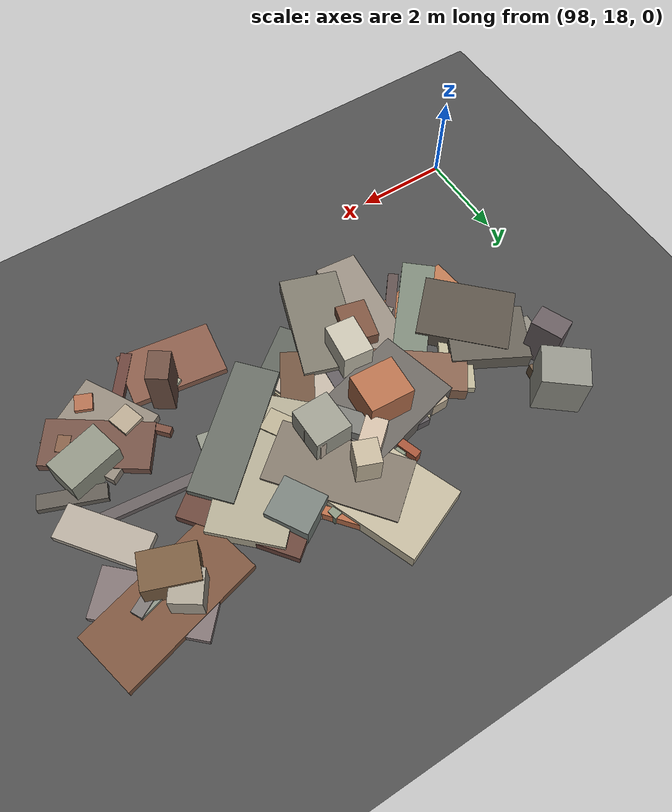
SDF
<sdf version="1.6">
 <world name="navitas_arena">
  <model name="ground_plane">
   <static>true</static>
   <link name="link">
    <collision name="collision">
     <geometry><plane><normal>0 0 1</normal><size>400 400</size></plane></geometry>
     <surface><friction><ode><mu>0.800</mu><mu2>0.800</mu2></ode></friction></surface>
    </collision>
    <visual name="visual">
     <cast_shadows>false</cast_shadows>
     <geometry><plane><normal>0 0 1</normal><size>400 400</size></plane></geometry>
     <material>
      <specular>0.04 0.04 0.04 1</specular>
      <script>
       <uri>file://media/materials/scripts/navitas_asphalt.material</uri>
       <name>Navitas/RealArenaAsphalt</name>
      </script>
     </material>
    </visual>
   </link>
  </model>
  <model name="deb_zor_19">
   <static>true</static>
   <pose>107.960 21.640 0.000 0 0 0</pose>
   <link name="link">
    <collision name="col_0">
     <pose>0.249 -0.945 0.342 0.000 0.000 3.403</pose>
     <geometry><box><size>1.146 0.755 0.685</size></box></geometry>
    </collision>
    <visual name="vis_0">
     <pose>0.249 -0.945 0.342 0.000 0.000 3.403</pose>
     <geometry><box><size>1.146 0.755 0.685</size></box></geometry>
     <material>
      <ambient>0.52 0.53 0.48 1</ambient>
      <diffuse>0.56 0.57 0.51 1</diffuse>
      <specular>0.05 0.05 0.045 1</specular>
     </material>
    </visual>
    <collision name="col_1">
     <pose>0.770 -0.571 0.084 0.000 0.000 2.771</pose>
     <geometry><box><size>1.347 0.318 0.167</size></box></geometry>
    </collision>
    <visual name="vis_1">
     <pose>0.770 -0.571 0.084 0.000 0.000 2.771</pose>
     <geometry><box><size>1.347 0.318 0.167</size></box></geometry>
     <material>
      <ambient>0.35 0.34 0.31 1</ambient>
      <diffuse>0.38 0.36 0.33 1</diffuse>
      <specular>0.05 0.05 0.045 1</specular>
     </material>
    </visual>
    <collision name="col_2">
     <pose>0.594 0.447 0.092 0.000 0.000 2.242</pose>
     <geometry><box><size>1.804 0.712 0.185</size></box></geometry>
    </collision>
    <visual name="vis_2">
     <pose>0.594 0.447 0.092 0.000 0.000 2.242</pose>
     <geometry><box><size>1.804 0.712 0.185</size></box></geometry>
     <material>
      <ambient>0.64 0.61 0.56 1</ambient>
      <diffuse>0.70 0.66 0.61 1</diffuse>
      <specular>0.05 0.05 0.045 1</specular>
     </material>
    </visual>
    <collision name="col_3">
     <pose>-0.097 -1.288 0.112 0.000 0.000 2.545</pose>
     <geometry><box><size>2.186 1.008 0.224</size></box></geometry>
    </collision>
    <visual name="vis_3">
     <pose>-0.097 -1.288 0.112 0.000 0.000 2.545</pose>
     <geometry><box><size>2.186 1.008 0.224</size></box></geometry>
     <material>
      <ambient>0.42 0.30 0.25 1</ambient>
      <diffuse>0.45 0.32 0.27 1</diffuse>
      <specular>0.05 0.05 0.045 1</specular>
     </material>
    </visual>
    <collision name="col_4">
     <pose>-0.656 0.235 0.075 0.000 0.000 3.037</pose>
     <geometry><box><size>2.300 0.229 0.150</size></box></geometry>
    </collision>
    <visual name="vis_4">
     <pose>-0.656 0.235 0.075 0.000 0.000 3.037</pose>
     <geometry><box><size>2.300 0.229 0.150</size></box></geometry>
     <material>
      <ambient>0.37 0.34 0.34 1</ambient>
      <diffuse>0.40 0.37 0.37 1</diffuse>
      <specular>0.05 0.05 0.045 1</specular>
     </material>
    </visual>
   </link>
  </model>
  <model name="deb_zor_94">
   <static>true</static>
   <pose>102.501 22.941 0.000 0 0 0</pose>
   <link name="link">
    <collision name="col_0">
     <pose>0.140 -1.023 0.117 0.000 0.000 1.494</pose>
     <geometry><box><size>2.828 1.320 0.233</size></box></geometry>
    </collision>
    <visual name="vis_0">
     <pose>0.140 -1.023 0.117 0.000 0.000 1.494</pose>
     <geometry><box><size>2.828 1.320 0.233</size></box></geometry>
     <material>
      <ambient>0.35 0.33 0.35 1</ambient>
      <diffuse>0.38 0.36 0.37 1</diffuse>
      <specular>0.05 0.05 0.045 1</specular>
     </material>
    </visual>
    <collision name="col_1">
     <pose>0.463 -0.564 0.141 0.000 0.000 0.103</pose>
     <geometry><box><size>0.380 0.413 0.281</size></box></geometry>
    </collision>
    <visual name="vis_1">
     <pose>0.463 -0.564 0.141 0.000 0.000 0.103</pose>
     <geometry><box><size>0.380 0.413 0.281</size></box></geometry>
     <material>
      <ambient>0.40 0.37 0.35 1</ambient>
      <diffuse>0.44 0.40 0.38 1</diffuse>
      <specular>0.05 0.05 0.045 1</specular>
     </material>
    </visual>
    <collision name="col_2">
     <pose>-0.500 -0.191 0.181 0.000 0.000 1.571</pose>
     <geometry><box><size>0.994 0.868 0.362</size></box></geometry>
    </collision>
    <visual name="vis_2">
     <pose>-0.500 -0.191 0.181 0.000 0.000 1.571</pose>
     <geometry><box><size>0.994 0.868 0.362</size></box></geometry>
     <material>
      <ambient>0.65 0.60 0.52 1</ambient>
      <diffuse>0.71 0.65 0.56 1</diffuse>
      <specular>0.05 0.05 0.045 1</specular>
     </material>
    </visual>
    <collision name="col_3">
     <pose>1.109 -0.287 0.330 0.000 0.000 2.240</pose>
     <geometry><box><size>0.744 0.469 0.659</size></box></geometry>
    </collision>
    <visual name="vis_3">
     <pose>1.109 -0.287 0.330 0.000 0.000 2.240</pose>
     <geometry><box><size>0.744 0.469 0.659</size></box></geometry>
     <material>
      <ambient>0.45 0.44 0.42 1</ambient>
      <diffuse>0.48 0.48 0.46 1</diffuse>
      <specular>0.05 0.05 0.045 1</specular>
     </material>
    </visual>
    <collision name="col_4">
     <pose>0.537 0.161 0.180 0.000 0.000 1.901</pose>
     <geometry><box><size>1.704 0.178 0.360</size></box></geometry>
    </collision>
    <visual name="vis_4">
     <pose>0.537 0.161 0.180 0.000 0.000 1.901</pose>
     <geometry><box><size>1.704 0.178 0.360</size></box></geometry>
     <material>
      <ambient>0.59 0.30 0.21 1</ambient>
      <diffuse>0.64 0.33 0.22 1</diffuse>
      <specular>0.05 0.05 0.045 1</specular>
     </material>
    </visual>
   </link>
  </model>
  <model name="deb_zor_148">
   <static>true</static>
   <pose>104.408 23.110 0.000 0 0 0</pose>
   <link name="link">
    <collision name="col_0">
     <pose>0.607 0.652 0.088 0.000 0.000 3.002</pose>
     <geometry><box><size>1.903 0.270 0.176</size></box></geometry>
    </collision>
    <visual name="vis_0">
     <pose>0.607 0.652 0.088 0.000 0.000 3.002</pose>
     <geometry><box><size>1.903 0.270 0.176</size></box></geometry>
     <material>
      <ambient>0.51 0.50 0.47 1</ambient>
      <diffuse>0.55 0.54 0.51 1</diffuse>
      <specular>0.05 0.05 0.045 1</specular>
     </material>
    </visual>
    <collision name="col_1">
     <pose>-0.999 0.143 0.450 0.000 0.000 0.715</pose>
     <geometry><box><size>0.667 0.447 0.900</size></box></geometry>
    </collision>
    <visual name="vis_1">
     <pose>-0.999 0.143 0.450 0.000 0.000 0.715</pose>
     <geometry><box><size>0.667 0.447 0.900</size></box></geometry>
     <material>
      <ambient>0.75 0.67 0.60 1</ambient>
      <diffuse>0.81 0.73 0.65 1</diffuse>
      <specular>0.05 0.05 0.045 1</specular>
     </material>
    </visual>
    <collision name="col_2">
     <pose>-0.596 0.710 0.148 0.000 0.000 0.206</pose>
     <geometry><box><size>2.047 0.204 0.296</size></box></geometry>
    </collision>
    <visual name="vis_2">
     <pose>-0.596 0.710 0.148 0.000 0.000 0.206</pose>
     <geometry><box><size>2.047 0.204 0.296</size></box></geometry>
     <material>
      <ambient>0.49 0.52 0.45 1</ambient>
      <diffuse>0.53 0.57 0.49 1</diffuse>
      <specular>0.05 0.05 0.045 1</specular>
     </material>
    </visual>
    <collision name="col_3">
     <pose>0.299 -0.127 0.127 0.000 0.000 2.830</pose>
     <geometry><box><size>0.467 0.393 0.254</size></box></geometry>
    </collision>
    <visual name="vis_3">
     <pose>0.299 -0.127 0.127 0.000 0.000 2.830</pose>
     <geometry><box><size>0.467 0.393 0.254</size></box></geometry>
     <material>
      <ambient>0.54 0.55 0.50 1</ambient>
      <diffuse>0.58 0.59 0.54 1</diffuse>
      <specular>0.05 0.05 0.045 1</specular>
     </material>
    </visual>
    <collision name="col_4">
     <pose>-0.578 0.266 0.163 0.000 0.000 1.890</pose>
     <geometry><box><size>2.414 0.928 0.325</size></box></geometry>
    </collision>
    <visual name="vis_4">
     <pose>-0.578 0.266 0.163 0.000 0.000 1.890</pose>
     <geometry><box><size>2.414 0.928 0.325</size></box></geometry>
     <material>
      <ambient>0.40 0.37 0.36 1</ambient>
      <diffuse>0.44 0.40 0.39 1</diffuse>
      <specular>0.05 0.05 0.045 1</specular>
     </material>
    </visual>
    <collision name="col_5">
     <pose>-0.174 0.261 0.201 0.000 0.000 2.254</pose>
     <geometry><box><size>2.702 1.289 0.401</size></box></geometry>
    </collision>
    <visual name="vis_5">
     <pose>-0.174 0.261 0.201 0.000 0.000 2.254</pose>
     <geometry><box><size>2.702 1.289 0.401</size></box></geometry>
     <material>
      <ambient>0.48 0.43 0.39 1</ambient>
      <diffuse>0.51 0.47 0.42 1</diffuse>
      <specular>0.05 0.05 0.045 1</specular>
     </material>
    </visual>
    <collision name="col_6">
     <pose>-0.568 0.750 0.179 0.000 0.000 1.955</pose>
     <geometry><box><size>2.997 1.621 0.358</size></box></geometry>
    </collision>
    <visual name="vis_6">
     <pose>-0.568 0.750 0.179 0.000 0.000 1.955</pose>
     <geometry><box><size>2.997 1.621 0.358</size></box></geometry>
     <material>
      <ambient>0.69 0.66 0.57 1</ambient>
      <diffuse>0.75 0.71 0.61 1</diffuse>
      <specular>0.05 0.05 0.045 1</specular>
     </material>
    </visual>
   </link>
  </model>
  <model name="deb_zor_173">
   <static>true</static>
   <pose>99.375 23.600 0.000 0 0 0</pose>
   <link name="link">
    <collision name="col_0">
     <pose>-0.218 -0.358 0.579 0.000 0.000 1.978</pose>
     <geometry><box><size>0.670 0.479 1.159</size></box></geometry>
    </collision>
    <visual name="vis_0">
     <pose>-0.218 -0.358 0.579 0.000 0.000 1.978</pose>
     <geometry><box><size>0.670 0.479 1.159</size></box></geometry>
     <material>
      <ambient>0.37 0.33 0.35 1</ambient>
      <diffuse>0.40 0.36 0.37 1</diffuse>
      <specular>0.05 0.05 0.045 1</specular>
     </material>
    </visual>
    <collision name="col_1">
     <pose>0.152 0.434 0.168 0.000 0.000 1.118</pose>
     <geometry><box><size>0.341 0.245 0.336</size></box></geometry>
    </collision>
    <visual name="vis_1">
     <pose>0.152 0.434 0.168 0.000 0.000 1.118</pose>
     <geometry><box><size>0.341 0.245 0.336</size></box></geometry>
     <material>
      <ambient>0.60 0.30 0.21 1</ambient>
      <diffuse>0.65 0.33 0.23 1</diffuse>
      <specular>0.05 0.05 0.045 1</specular>
     </material>
    </visual>
    <collision name="col_2">
     <pose>0.245 0.061 0.155 0.000 0.000 1.406</pose>
     <geometry><box><size>0.335 0.222 0.310</size></box></geometry>
    </collision>
    <visual name="vis_2">
     <pose>0.245 0.061 0.155 0.000 0.000 1.406</pose>
     <geometry><box><size>0.335 0.222 0.310</size></box></geometry>
     <material>
      <ambient>0.41 0.33 0.25 1</ambient>
      <diffuse>0.45 0.36 0.27 1</diffuse>
      <specular>0.05 0.05 0.045 1</specular>
     </material>
    </visual>
    <collision name="col_3">
     <pose>0.181 -0.553 0.066 0.000 0.000 2.649</pose>
     <geometry><box><size>1.258 0.281 0.133</size></box></geometry>
    </collision>
    <visual name="vis_3">
     <pose>0.181 -0.553 0.066 0.000 0.000 2.649</pose>
     <geometry><box><size>1.258 0.281 0.133</size></box></geometry>
     <material>
      <ambient>0.68 0.63 0.56 1</ambient>
      <diffuse>0.73 0.68 0.61 1</diffuse>
      <specular>0.05 0.05 0.045 1</specular>
     </material>
    </visual>
    <collision name="col_4">
     <pose>-0.272 -0.545 0.081 0.000 0.000 1.469</pose>
     <geometry><box><size>1.233 0.307 0.162</size></box></geometry>
    </collision>
    <visual name="vis_4">
     <pose>-0.272 -0.545 0.081 0.000 0.000 1.469</pose>
     <geometry><box><size>1.233 0.307 0.162</size></box></geometry>
     <material>
      <ambient>0.51 0.49 0.46 1</ambient>
      <diffuse>0.55 0.53 0.49 1</diffuse>
      <specular>0.05 0.05 0.045 1</specular>
     </material>
    </visual>
    <collision name="col_5">
     <pose>0.132 0.523 0.540 0.000 0.000 0.896</pose>
     <geometry><box><size>0.826 0.958 1.079</size></box></geometry>
    </collision>
    <visual name="vis_5">
     <pose>0.132 0.523 0.540 0.000 0.000 0.896</pose>
     <geometry><box><size>0.826 0.958 1.079</size></box></geometry>
     <material>
      <ambient>0.53 0.53 0.49 1</ambient>
      <diffuse>0.57 0.57 0.53 1</diffuse>
      <specular>0.05 0.05 0.045 1</specular>
     </material>
    </visual>
   </link>
  </model>
  <model name="deb_zor_176">
   <static>true</static>
   <pose>104.453 23.768 0.000 0 0 0</pose>
   <link name="link">
    <collision name="col_0">
     <pose>0.305 0.213 0.124 0.000 0.000 2.271</pose>
     <geometry><box><size>1.696 0.184 0.248</size></box></geometry>
    </collision>
    <visual name="vis_0">
     <pose>0.305 0.213 0.124 0.000 0.000 2.271</pose>
     <geometry><box><size>1.696 0.184 0.248</size></box></geometry>
     <material>
      <ambient>0.67 0.40 0.27 1</ambient>
      <diffuse>0.72 0.43 0.29 1</diffuse>
      <specular>0.05 0.05 0.045 1</specular>
     </material>
    </visual>
    <collision name="col_1">
     <pose>-0.664 -0.163 0.565 0.000 0.000 1.196</pose>
     <geometry><box><size>0.513 0.488 1.131</size></box></geometry>
    </collision>
    <visual name="vis_1">
     <pose>-0.664 -0.163 0.565 0.000 0.000 1.196</pose>
     <geometry><box><size>0.513 0.488 1.131</size></box></geometry>
     <material>
      <ambient>0.70 0.66 0.56 1</ambient>
      <diffuse>0.76 0.71 0.61 1</diffuse>
      <specular>0.05 0.05 0.045 1</specular>
     </material>
    </visual>
    <collision name="col_2">
     <pose>0.852 -0.194 0.258 0.000 0.000 2.118</pose>
     <geometry><box><size>0.911 0.841 0.517</size></box></geometry>
    </collision>
    <visual name="vis_2">
     <pose>0.852 -0.194 0.258 0.000 0.000 2.118</pose>
     <geometry><box><size>0.911 0.841 0.517</size></box></geometry>
     <material>
      <ambient>0.44 0.46 0.44 1</ambient>
      <diffuse>0.47 0.50 0.48 1</diffuse>
      <specular>0.05 0.05 0.045 1</specular>
     </material>
    </visual>
    <collision name="col_3">
     <pose>-0.075 -0.874 0.085 0.000 0.000 2.013</pose>
     <geometry><box><size>1.895 1.226 0.171</size></box></geometry>
    </collision>
    <visual name="vis_3">
     <pose>-0.075 -0.874 0.085 0.000 0.000 2.013</pose>
     <geometry><box><size>1.895 1.226 0.171</size></box></geometry>
     <material>
      <ambient>0.70 0.62 0.56 1</ambient>
      <diffuse>0.76 0.67 0.60 1</diffuse>
      <specular>0.05 0.05 0.045 1</specular>
     </material>
    </visual>
   </link>
  </model>
  <model name="deb_zor_179">
   <static>true</static>
   <pose>105.017 22.490 0.000 0 0 0</pose>
   <link name="link">
    <collision name="col_0">
     <pose>-0.923 0.060 0.505 0.000 0.000 3.164</pose>
     <geometry><box><size>0.785 0.858 1.011</size></box></geometry>
    </collision>
    <visual name="vis_0">
     <pose>-0.923 0.060 0.505 0.000 0.000 3.164</pose>
     <geometry><box><size>0.785 0.858 1.011</size></box></geometry>
     <material>
      <ambient>0.56 0.57 0.51 1</ambient>
      <diffuse>0.61 0.61 0.56 1</diffuse>
      <specular>0.05 0.05 0.045 1</specular>
     </material>
    </visual>
    <collision name="col_1">
     <pose>-0.075 1.099 0.174 0.000 0.000 2.875</pose>
     <geometry><box><size>0.306 0.389 0.348</size></box></geometry>
    </collision>
    <visual name="vis_1">
     <pose>-0.075 1.099 0.174 0.000 0.000 2.875</pose>
     <geometry><box><size>0.306 0.389 0.348</size></box></geometry>
     <material>
      <ambient>0.39 0.27 0.17 1</ambient>
      <diffuse>0.42 0.29 0.18 1</diffuse>
      <specular>0.05 0.05 0.045 1</specular>
     </material>
    </visual>
    <collision name="col_2">
     <pose>0.917 0.502 0.113 0.000 0.000 2.242</pose>
     <geometry><box><size>2.461 1.457 0.226</size></box></geometry>
    </collision>
    <visual name="vis_2">
     <pose>0.917 0.502 0.113 0.000 0.000 2.242</pose>
     <geometry><box><size>2.461 1.457 0.226</size></box></geometry>
     <material>
      <ambient>0.38 0.25 0.21 1</ambient>
      <diffuse>0.41 0.27 0.23 1</diffuse>
      <specular>0.05 0.05 0.045 1</specular>
     </material>
    </visual>
    <collision name="col_3">
     <pose>-0.759 0.247 0.451 0.000 0.000 1.757</pose>
     <geometry><box><size>0.480 0.382 0.903</size></box></geometry>
    </collision>
    <visual name="vis_3">
     <pose>-0.759 0.247 0.451 0.000 0.000 1.757</pose>
     <geometry><box><size>0.480 0.382 0.903</size></box></geometry>
     <material>
      <ambient>0.72 0.66 0.60 1</ambient>
      <diffuse>0.78 0.72 0.65 1</diffuse>
      <specular>0.05 0.05 0.045 1</specular>
     </material>
    </visual>
   </link>
  </model>
  <model name="deb_zor_194">
   <static>true</static>
   <pose>108.022 20.241 0.000 0 0 0</pose>
   <link name="link">
    <collision name="col_0">
     <pose>-0.318 -0.810 0.156 0.000 0.000 2.743</pose>
     <geometry><box><size>0.365 0.357 0.311</size></box></geometry>
    </collision>
    <visual name="vis_0">
     <pose>-0.318 -0.810 0.156 0.000 0.000 2.743</pose>
     <geometry><box><size>0.365 0.357 0.311</size></box></geometry>
     <material>
      <ambient>0.64 0.40 0.28 1</ambient>
      <diffuse>0.69 0.43 0.31 1</diffuse>
      <specular>0.05 0.05 0.045 1</specular>
     </material>
    </visual>
    <collision name="col_1">
     <pose>0.400 -0.234 0.117 0.000 0.000 4.080</pose>
     <geometry><box><size>0.359 0.267 0.234</size></box></geometry>
    </collision>
    <visual name="vis_1">
     <pose>0.400 -0.234 0.117 0.000 0.000 4.080</pose>
     <geometry><box><size>0.359 0.267 0.234</size></box></geometry>
     <material>
      <ambient>0.48 0.34 0.26 1</ambient>
      <diffuse>0.52 0.37 0.28 1</diffuse>
      <specular>0.05 0.05 0.045 1</specular>
     </material>
    </visual>
    <collision name="col_2">
     <pose>-0.343 -0.161 0.108 0.000 0.000 2.096</pose>
     <geometry><box><size>1.729 1.578 0.216</size></box></geometry>
    </collision>
    <visual name="vis_2">
     <pose>-0.343 -0.161 0.108 0.000 0.000 2.096</pose>
     <geometry><box><size>1.729 1.578 0.216</size></box></geometry>
     <material>
      <ambient>0.53 0.49 0.44 1</ambient>
      <diffuse>0.57 0.53 0.48 1</diffuse>
      <specular>0.05 0.05 0.045 1</specular>
     </material>
    </visual>
    <collision name="col_3">
     <pose>-0.864 -0.031 0.154 0.000 0.000 1.888</pose>
     <geometry><box><size>0.475 0.470 0.308</size></box></geometry>
    </collision>
    <visual name="vis_3">
     <pose>-0.864 -0.031 0.154 0.000 0.000 1.888</pose>
     <geometry><box><size>0.475 0.470 0.308</size></box></geometry>
     <material>
      <ambient>0.66 0.61 0.51 1</ambient>
      <diffuse>0.71 0.65 0.56 1</diffuse>
      <specular>0.05 0.05 0.045 1</specular>
     </material>
    </visual>
   </link>
  </model>
  <model name="deb_zor_198">
   <static>true</static>
   <pose>102.661 21.166 0.000 0 0 0</pose>
   <link name="link">
    <collision name="col_0">
     <pose>-0.505 0.526 0.114 0.000 0.000 1.350</pose>
     <geometry><box><size>3.135 0.951 0.227</size></box></geometry>
    </collision>
    <visual name="vis_0">
     <pose>-0.505 0.526 0.114 0.000 0.000 1.350</pose>
     <geometry><box><size>3.135 0.951 0.227</size></box></geometry>
     <material>
      <ambient>0.69 0.65 0.55 1</ambient>
      <diffuse>0.74 0.70 0.59 1</diffuse>
      <specular>0.05 0.05 0.045 1</specular>
     </material>
    </visual>
    <collision name="col_1">
     <pose>1.090 -0.173 0.080 0.000 0.000 0.344</pose>
     <geometry><box><size>1.270 0.254 0.159</size></box></geometry>
    </collision>
    <visual name="vis_1">
     <pose>1.090 -0.173 0.080 0.000 0.000 0.344</pose>
     <geometry><box><size>1.270 0.254 0.159</size></box></geometry>
     <material>
      <ambient>0.69 0.65 0.53 1</ambient>
      <diffuse>0.75 0.70 0.58 1</diffuse>
      <specular>0.05 0.05 0.045 1</specular>
     </material>
    </visual>
    <collision name="col_2">
     <pose>-0.473 -0.279 0.317 0.000 0.000 1.326</pose>
     <geometry><box><size>0.892 0.638 0.634</size></box></geometry>
    </collision>
    <visual name="vis_2">
     <pose>-0.473 -0.279 0.317 0.000 0.000 1.326</pose>
     <geometry><box><size>0.892 0.638 0.634</size></box></geometry>
     <material>
      <ambient>0.45 0.31 0.23 1</ambient>
      <diffuse>0.49 0.33 0.25 1</diffuse>
      <specular>0.05 0.05 0.045 1</specular>
     </material>
    </visual>
    <collision name="col_3">
     <pose>-0.307 -0.041 0.084 0.000 0.000 -0.076</pose>
     <geometry><box><size>0.376 0.355 0.168</size></box></geometry>
    </collision>
    <visual name="vis_3">
     <pose>-0.307 -0.041 0.084 0.000 0.000 -0.076</pose>
     <geometry><box><size>0.376 0.355 0.168</size></box></geometry>
     <material>
      <ambient>0.46 0.45 0.41 1</ambient>
      <diffuse>0.50 0.48 0.44 1</diffuse>
      <specular>0.05 0.05 0.045 1</specular>
     </material>
    </visual>
    <collision name="col_4">
     <pose>0.818 -0.288 0.087 0.000 0.000 -0.919</pose>
     <geometry><box><size>1.493 1.219 0.174</size></box></geometry>
    </collision>
    <visual name="vis_4">
     <pose>0.818 -0.288 0.087 0.000 0.000 -0.919</pose>
     <geometry><box><size>1.493 1.219 0.174</size></box></geometry>
     <material>
      <ambient>0.34 0.36 0.34 1</ambient>
      <diffuse>0.37 0.39 0.36 1</diffuse>
      <specular>0.05 0.05 0.045 1</specular>
     </material>
    </visual>
   </link>
  </model>
  <model name="deb_zor_240">
   <static>true</static>
   <pose>100.753 21.870 0.000 0 0 0</pose>
   <link name="link">
    <collision name="col_0">
     <pose>0.051 -0.913 0.121 0.000 0.000 0.105</pose>
     <geometry><box><size>2.254 0.839 0.242</size></box></geometry>
    </collision>
    <visual name="vis_0">
     <pose>0.051 -0.913 0.121 0.000 0.000 0.105</pose>
     <geometry><box><size>2.254 0.839 0.242</size></box></geometry>
     <material>
      <ambient>0.68 0.44 0.30 1</ambient>
      <diffuse>0.73 0.47 0.32 1</diffuse>
      <specular>0.05 0.05 0.045 1</specular>
     </material>
    </visual>
    <collision name="col_1">
     <pose>0.257 -0.600 0.167 0.000 0.000 0.862</pose>
     <geometry><box><size>2.693 0.705 0.335</size></box></geometry>
    </collision>
    <visual name="vis_1">
     <pose>0.257 -0.600 0.167 0.000 0.000 0.862</pose>
     <geometry><box><size>2.693 0.705 0.335</size></box></geometry>
     <material>
      <ambient>0.45 0.49 0.44 1</ambient>
      <diffuse>0.49 0.53 0.47 1</diffuse>
      <specular>0.05 0.05 0.045 1</specular>
     </material>
    </visual>
    <collision name="col_2">
     <pose>-0.703 -0.059 0.193 0.000 0.000 -0.778</pose>
     <geometry><box><size>1.910 1.411 0.387</size></box></geometry>
    </collision>
    <visual name="vis_2">
     <pose>-0.703 -0.059 0.193 0.000 0.000 -0.778</pose>
     <geometry><box><size>1.910 1.411 0.387</size></box></geometry>
     <material>
      <ambient>0.33 0.30 0.26 1</ambient>
      <diffuse>0.35 0.32 0.28 1</diffuse>
      <specular>0.05 0.05 0.045 1</specular>
     </material>
    </visual>
    <collision name="col_3">
     <pose>-0.770 0.574 0.188 0.000 0.000 -0.492</pose>
     <geometry><box><size>1.628 1.227 0.375</size></box></geometry>
    </collision>
    <visual name="vis_3">
     <pose>-0.770 0.574 0.188 0.000 0.000 -0.492</pose>
     <geometry><box><size>1.628 1.227 0.375</size></box></geometry>
     <material>
      <ambient>0.37 0.36 0.32 1</ambient>
      <diffuse>0.40 0.38 0.34 1</diffuse>
      <specular>0.05 0.05 0.045 1</specular>
     </material>
    </visual>
    <collision name="col_4">
     <pose>0.950 0.480 0.169 0.000 0.000 -0.634</pose>
     <geometry><box><size>2.060 0.863 0.338</size></box></geometry>
    </collision>
    <visual name="vis_4">
     <pose>0.950 0.480 0.169 0.000 0.000 -0.634</pose>
     <geometry><box><size>2.060 0.863 0.338</size></box></geometry>
     <material>
      <ambient>0.49 0.36 0.29 1</ambient>
      <diffuse>0.53 0.39 0.31 1</diffuse>
      <specular>0.05 0.05 0.045 1</specular>
     </material>
    </visual>
    <collision name="col_5">
     <pose>-0.227 0.205 0.091 0.000 0.000 1.009</pose>
     <geometry><box><size>2.404 0.678 0.181</size></box></geometry>
    </collision>
    <visual name="vis_5">
     <pose>-0.227 0.205 0.091 0.000 0.000 1.009</pose>
     <geometry><box><size>2.404 0.678 0.181</size></box></geometry>
     <material>
      <ambient>0.68 0.64 0.54 1</ambient>
      <diffuse>0.73 0.70 0.59 1</diffuse>
      <specular>0.05 0.05 0.045 1</specular>
     </material>
    </visual>
   </link>
  </model>
  <model name="deb_zor_242">
   <static>true</static>
   <pose>104.197 21.112 0.000 0 0 0</pose>
   <link name="link">
    <collision name="col_0">
     <pose>0.443 0.253 0.108 0.000 0.000 0.771</pose>
     <geometry><box><size>0.479 0.281 0.217</size></box></geometry>
    </collision>
    <visual name="vis_0">
     <pose>0.443 0.253 0.108 0.000 0.000 0.771</pose>
     <geometry><box><size>0.479 0.281 0.217</size></box></geometry>
     <material>
      <ambient>0.40 0.28 0.21 1</ambient>
      <diffuse>0.43 0.30 0.22 1</diffuse>
      <specular>0.05 0.05 0.045 1</specular>
     </material>
    </visual>
    <collision name="col_1">
     <pose>0.893 0.442 0.093 0.000 0.000 1.300</pose>
     <geometry><box><size>0.270 0.377 0.187</size></box></geometry>
    </collision>
    <visual name="vis_1">
     <pose>0.893 0.442 0.093 0.000 0.000 1.300</pose>
     <geometry><box><size>0.270 0.377 0.187</size></box></geometry>
     <material>
      <ambient>0.68 0.65 0.60 1</ambient>
      <diffuse>0.73 0.71 0.65 1</diffuse>
      <specular>0.05 0.05 0.045 1</specular>
     </material>
    </visual>
    <collision name="col_2">
     <pose>0.391 0.709 0.069 0.000 0.000 -0.487</pose>
     <geometry><box><size>0.216 0.321 0.137</size></box></geometry>
    </collision>
    <visual name="vis_2">
     <pose>0.391 0.709 0.069 0.000 0.000 -0.487</pose>
     <geometry><box><size>0.216 0.321 0.137</size></box></geometry>
     <material>
      <ambient>0.52 0.53 0.47 1</ambient>
      <diffuse>0.56 0.58 0.51 1</diffuse>
      <specular>0.05 0.05 0.045 1</specular>
     </material>
    </visual>
    <collision name="col_3">
     <pose>-0.139 0.538 0.069 0.000 0.000 0.025</pose>
     <geometry><box><size>0.377 0.200 0.137</size></box></geometry>
    </collision>
    <visual name="vis_3">
     <pose>-0.139 0.538 0.069 0.000 0.000 0.025</pose>
     <geometry><box><size>0.377 0.200 0.137</size></box></geometry>
     <material>
      <ambient>0.41 0.28 0.22 1</ambient>
      <diffuse>0.44 0.30 0.24 1</diffuse>
      <specular>0.05 0.05 0.045 1</specular>
     </material>
    </visual>
    <collision name="col_4">
     <pose>-0.249 0.312 0.145 0.000 0.000 1.046</pose>
     <geometry><box><size>1.711 0.686 0.289</size></box></geometry>
    </collision>
    <visual name="vis_4">
     <pose>-0.249 0.312 0.145 0.000 0.000 1.046</pose>
     <geometry><box><size>1.711 0.686 0.289</size></box></geometry>
     <material>
      <ambient>0.40 0.30 0.23 1</ambient>
      <diffuse>0.44 0.33 0.25 1</diffuse>
      <specular>0.05 0.05 0.045 1</specular>
     </material>
    </visual>
    <collision name="col_5">
     <pose>0.416 0.948 0.191 0.000 0.000 0.550</pose>
     <geometry><box><size>0.490 0.884 0.382</size></box></geometry>
    </collision>
    <visual name="vis_5">
     <pose>0.416 0.948 0.191 0.000 0.000 0.550</pose>
     <geometry><box><size>0.490 0.884 0.382</size></box></geometry>
     <material>
      <ambient>0.67 0.63 0.53 1</ambient>
      <diffuse>0.72 0.68 0.57 1</diffuse>
      <specular>0.05 0.05 0.045 1</specular>
     </material>
    </visual>
   </link>
  </model>
  <model name="deb_zor_243">
   <static>true</static>
   <pose>102.793 22.143 0.000 0 0 0</pose>
   <link name="link">
    <collision name="col_0">
     <pose>-0.131 -0.841 0.466 0.000 0.000 1.465</pose>
     <geometry><box><size>0.858 0.639 0.931</size></box></geometry>
    </collision>
    <visual name="vis_0">
     <pose>-0.131 -0.841 0.466 0.000 0.000 1.465</pose>
     <geometry><box><size>0.858 0.639 0.931</size></box></geometry>
     <material>
      <ambient>0.72 0.70 0.63 1</ambient>
      <diffuse>0.77 0.75 0.68 1</diffuse>
      <specular>0.05 0.05 0.045 1</specular>
     </material>
    </visual>
    <collision name="col_1">
     <pose>0.004 0.477 0.611 0.000 0.000 -0.053</pose>
     <geometry><box><size>0.935 0.839 1.222</size></box></geometry>
    </collision>
    <visual name="vis_1">
     <pose>0.004 0.477 0.611 0.000 0.000 -0.053</pose>
     <geometry><box><size>0.935 0.839 1.222</size></box></geometry>
     <material>
      <ambient>0.66 0.41 0.28 1</ambient>
      <diffuse>0.71 0.44 0.30 1</diffuse>
      <specular>0.05 0.05 0.045 1</specular>
     </material>
    </visual>
    <collision name="col_2">
     <pose>-0.630 0.308 0.086 0.000 0.000 1.430</pose>
     <geometry><box><size>0.372 0.297 0.172</size></box></geometry>
    </collision>
    <visual name="vis_2">
     <pose>-0.630 0.308 0.086 0.000 0.000 1.430</pose>
     <geometry><box><size>0.372 0.297 0.172</size></box></geometry>
     <material>
      <ambient>0.51 0.51 0.46 1</ambient>
      <diffuse>0.55 0.56 0.50 1</diffuse>
      <specular>0.05 0.05 0.045 1</specular>
     </material>
    </visual>
    <collision name="col_3">
     <pose>0.604 0.850 0.112 0.000 0.000 1.880</pose>
     <geometry><box><size>0.287 0.297 0.224</size></box></geometry>
    </collision>
    <visual name="vis_3">
     <pose>0.604 0.850 0.112 0.000 0.000 1.880</pose>
     <geometry><box><size>0.287 0.297 0.224</size></box></geometry>
     <material>
      <ambient>0.55 0.52 0.48 1</ambient>
      <diffuse>0.59 0.57 0.52 1</diffuse>
      <specular>0.05 0.05 0.045 1</specular>
     </material>
    </visual>
    <collision name="col_4">
     <pose>0.488 -0.512 0.112 0.000 0.000 1.939</pose>
     <geometry><box><size>1.883 1.614 0.225</size></box></geometry>
    </collision>
    <visual name="vis_4">
     <pose>0.488 -0.512 0.112 0.000 0.000 1.939</pose>
     <geometry><box><size>1.883 1.614 0.225</size></box></geometry>
     <material>
      <ambient>0.70 0.65 0.59 1</ambient>
      <diffuse>0.75 0.70 0.64 1</diffuse>
      <specular>0.05 0.05 0.045 1</specular>
     </material>
    </visual>
    <collision name="col_5">
     <pose>-0.135 0.420 0.204 0.000 0.000 0.254</pose>
     <geometry><box><size>2.213 1.690 0.409</size></box></geometry>
    </collision>
    <visual name="vis_5">
     <pose>-0.135 0.420 0.204 0.000 0.000 0.254</pose>
     <geometry><box><size>2.213 1.690 0.409</size></box></geometry>
     <material>
      <ambient>0.39 0.37 0.35 1</ambient>
      <diffuse>0.42 0.40 0.38 1</diffuse>
      <specular>0.05 0.05 0.045 1</specular>
     </material>
    </visual>
   </link>
  </model>
  <model name="deb_zor_252">
   <static>true</static>
   <pose>108.167 23.821 0.000 0 0 0</pose>
   <link name="link">
    <collision name="col_0">
     <pose>-0.054 -0.022 0.104 0.000 0.000 3.399</pose>
     <geometry><box><size>3.019 1.358 0.208</size></box></geometry>
    </collision>
    <visual name="vis_0">
     <pose>-0.054 -0.022 0.104 0.000 0.000 3.399</pose>
     <geometry><box><size>3.019 1.358 0.208</size></box></geometry>
     <material>
      <ambient>0.44 0.31 0.22 1</ambient>
      <diffuse>0.48 0.33 0.24 1</diffuse>
      <specular>0.05 0.05 0.045 1</specular>
     </material>
    </visual>
    <collision name="col_1">
     <pose>-0.438 0.108 0.424 0.000 0.000 0.984</pose>
     <geometry><box><size>0.652 0.621 0.849</size></box></geometry>
    </collision>
    <visual name="vis_1">
     <pose>-0.438 0.108 0.424 0.000 0.000 0.984</pose>
     <geometry><box><size>0.652 0.621 0.849</size></box></geometry>
     <material>
      <ambient>0.62 0.59 0.53 1</ambient>
      <diffuse>0.67 0.64 0.58 1</diffuse>
      <specular>0.05 0.05 0.045 1</specular>
     </material>
    </visual>
    <collision name="col_2">
     <pose>-0.130 -0.202 0.139 0.000 0.000 3.405</pose>
     <geometry><box><size>1.338 0.158 0.279</size></box></geometry>
    </collision>
    <visual name="vis_2">
     <pose>-0.130 -0.202 0.139 0.000 0.000 3.405</pose>
     <geometry><box><size>1.338 0.158 0.279</size></box></geometry>
     <material>
      <ambient>0.49 0.52 0.47 1</ambient>
      <diffuse>0.53 0.56 0.51 1</diffuse>
      <specular>0.05 0.05 0.045 1</specular>
     </material>
    </visual>
    <collision name="col_3">
     <pose>0.356 -0.156 0.162 0.000 0.000 2.075</pose>
     <geometry><box><size>0.241 0.410 0.324</size></box></geometry>
    </collision>
    <visual name="vis_3">
     <pose>0.356 -0.156 0.162 0.000 0.000 2.075</pose>
     <geometry><box><size>0.241 0.410 0.324</size></box></geometry>
     <material>
      <ambient>0.44 0.43 0.42 1</ambient>
      <diffuse>0.48 0.46 0.45 1</diffuse>
      <specular>0.05 0.05 0.045 1</specular>
     </material>
    </visual>
    <collision name="col_4">
     <pose>-0.336 -0.330 0.461 0.000 0.000 2.789</pose>
     <geometry><box><size>1.091 0.722 0.922</size></box></geometry>
    </collision>
    <visual name="vis_4">
     <pose>-0.336 -0.330 0.461 0.000 0.000 2.789</pose>
     <geometry><box><size>1.091 0.722 0.922</size></box></geometry>
     <material>
      <ambient>0.44 0.33 0.23 1</ambient>
      <diffuse>0.47 0.36 0.25 1</diffuse>
      <specular>0.05 0.05 0.045 1</specular>
     </material>
    </visual>
    <collision name="col_5">
     <pose>0.157 -0.126 0.085 0.000 0.000 2.397</pose>
     <geometry><box><size>2.253 0.977 0.170</size></box></geometry>
    </collision>
    <visual name="vis_5">
     <pose>0.157 -0.126 0.085 0.000 0.000 2.397</pose>
     <geometry><box><size>2.253 0.977 0.170</size></box></geometry>
     <material>
      <ambient>0.47 0.42 0.42 1</ambient>
      <diffuse>0.50 0.45 0.45 1</diffuse>
      <specular>0.05 0.05 0.045 1</specular>
     </material>
    </visual>
   </link>
  </model>
  <model name="deb_zor_326">
   <static>true</static>
   <pose>105.907 22.412 0.000 0 0 0</pose>
   <link name="link">
    <collision name="col_0">
     <pose>-0.427 -0.824 0.199 0.000 0.000 0.731</pose>
     <geometry><box><size>2.902 0.934 0.398</size></box></geometry>
    </collision>
    <visual name="vis_0">
     <pose>-0.427 -0.824 0.199 0.000 0.000 0.731</pose>
     <geometry><box><size>2.902 0.934 0.398</size></box></geometry>
     <material>
      <ambient>0.37 0.38 0.36 1</ambient>
      <diffuse>0.40 0.42 0.39 1</diffuse>
      <specular>0.05 0.05 0.045 1</specular>
     </material>
    </visual>
    <collision name="col_1">
     <pose>-0.518 0.098 0.173 0.000 0.000 0.808</pose>
     <geometry><box><size>2.995 1.541 0.346</size></box></geometry>
    </collision>
    <visual name="vis_1">
     <pose>-0.518 0.098 0.173 0.000 0.000 0.808</pose>
     <geometry><box><size>2.995 1.541 0.346</size></box></geometry>
     <material>
      <ambient>0.63 0.61 0.53 1</ambient>
      <diffuse>0.69 0.66 0.57 1</diffuse>
      <specular>0.05 0.05 0.045 1</specular>
     </material>
    </visual>
    <collision name="col_2">
     <pose>-0.702 0.903 0.116 0.000 0.000 0.439</pose>
     <geometry><box><size>1.756 0.183 0.231</size></box></geometry>
    </collision>
    <visual name="vis_2">
     <pose>-0.702 0.903 0.116 0.000 0.000 0.439</pose>
     <geometry><box><size>1.756 0.183 0.231</size></box></geometry>
     <material>
      <ambient>0.40 0.26 0.20 1</ambient>
      <diffuse>0.43 0.28 0.21 1</diffuse>
      <specular>0.05 0.05 0.045 1</specular>
     </material>
    </visual>
    <collision name="col_3">
     <pose>0.275 -0.297 0.079 0.000 0.000 1.384</pose>
     <geometry><box><size>1.825 0.265 0.158</size></box></geometry>
    </collision>
    <visual name="vis_3">
     <pose>0.275 -0.297 0.079 0.000 0.000 1.384</pose>
     <geometry><box><size>1.825 0.265 0.158</size></box></geometry>
     <material>
      <ambient>0.52 0.52 0.48 1</ambient>
      <diffuse>0.56 0.57 0.52 1</diffuse>
      <specular>0.05 0.05 0.045 1</specular>
     </material>
    </visual>
   </link>
  </model>
  <model name="deb_zor_349">
   <static>true</static>
   <pose>106.424 20.319 0.000 0 0 0</pose>
   <link name="link">
    <collision name="col_0">
     <pose>-0.319 -0.394 0.124 0.000 0.000 0.507</pose>
     <geometry><box><size>0.461 0.376 0.247</size></box></geometry>
    </collision>
    <visual name="vis_0">
     <pose>-0.319 -0.394 0.124 0.000 0.000 0.507</pose>
     <geometry><box><size>0.461 0.376 0.247</size></box></geometry>
     <material>
      <ambient>0.62 0.62 0.53 1</ambient>
      <diffuse>0.67 0.67 0.58 1</diffuse>
      <specular>0.05 0.05 0.045 1</specular>
     </material>
    </visual>
    <collision name="col_1">
     <pose>-0.630 -0.838 0.084 0.000 0.000 -0.137</pose>
     <geometry><box><size>1.986 1.191 0.167</size></box></geometry>
    </collision>
    <visual name="vis_1">
     <pose>-0.630 -0.838 0.084 0.000 0.000 -0.137</pose>
     <geometry><box><size>1.986 1.191 0.167</size></box></geometry>
     <material>
      <ambient>0.49 0.34 0.27 1</ambient>
      <diffuse>0.53 0.36 0.29 1</diffuse>
      <specular>0.05 0.05 0.045 1</specular>
     </material>
    </visual>
    <collision name="col_2">
     <pose>0.776 -0.227 0.098 0.000 0.000 2.306</pose>
     <geometry><box><size>2.057 0.155 0.196</size></box></geometry>
    </collision>
    <visual name="vis_2">
     <pose>0.776 -0.227 0.098 0.000 0.000 2.306</pose>
     <geometry><box><size>2.057 0.155 0.196</size></box></geometry>
     <material>
      <ambient>0.44 0.29 0.23 1</ambient>
      <diffuse>0.48 0.31 0.25 1</diffuse>
      <specular>0.05 0.05 0.045 1</specular>
     </material>
    </visual>
    <collision name="col_3">
     <pose>-0.235 -0.308 0.620 0.000 0.000 0.979</pose>
     <geometry><box><size>0.623 0.451 1.240</size></box></geometry>
    </collision>
    <visual name="vis_3">
     <pose>-0.235 -0.308 0.620 0.000 0.000 0.979</pose>
     <geometry><box><size>0.623 0.451 1.240</size></box></geometry>
     <material>
      <ambient>0.40 0.29 0.24 1</ambient>
      <diffuse>0.43 0.31 0.26 1</diffuse>
      <specular>0.05 0.05 0.045 1</specular>
     </material>
    </visual>
    <collision name="col_4">
     <pose>0.484 -0.937 0.091 0.000 0.000 0.929</pose>
     <geometry><box><size>1.459 0.235 0.181</size></box></geometry>
    </collision>
    <visual name="vis_4">
     <pose>0.484 -0.937 0.091 0.000 0.000 0.929</pose>
     <geometry><box><size>1.459 0.235 0.181</size></box></geometry>
     <material>
      <ambient>0.38 0.24 0.21 1</ambient>
      <diffuse>0.41 0.26 0.23 1</diffuse>
      <specular>0.05 0.05 0.045 1</specular>
     </material>
    </visual>
   </link>
  </model>
  <model name="deb_zor_391">
   <static>true</static>
   <pose>101.842 20.494 0.000 0 0 0</pose>
   <link name="link">
    <collision name="col_0">
     <pose>-0.078 0.093 0.158 0.000 0.000 1.480</pose>
     <geometry><box><size>2.720 0.917 0.315</size></box></geometry>
    </collision>
    <visual name="vis_0">
     <pose>-0.078 0.093 0.158 0.000 0.000 1.480</pose>
     <geometry><box><size>2.720 0.917 0.315</size></box></geometry>
     <material>
      <ambient>0.55 0.51 0.46 1</ambient>
      <diffuse>0.59 0.55 0.50 1</diffuse>
      <specular>0.05 0.05 0.045 1</specular>
     </material>
    </visual>
    <collision name="col_1">
     <pose>-0.129 -0.029 0.155 0.000 0.000 2.250</pose>
     <geometry><box><size>1.228 0.243 0.310</size></box></geometry>
    </collision>
    <visual name="vis_1">
     <pose>-0.129 -0.029 0.155 0.000 0.000 2.250</pose>
     <geometry><box><size>1.228 0.243 0.310</size></box></geometry>
     <material>
      <ambient>0.55 0.53 0.48 1</ambient>
      <diffuse>0.59 0.57 0.52 1</diffuse>
      <specular>0.05 0.05 0.045 1</specular>
     </material>
    </visual>
    <collision name="col_2">
     <pose>-0.477 0.431 0.127 0.000 0.000 0.890</pose>
     <geometry><box><size>2.091 0.222 0.253</size></box></geometry>
    </collision>
    <visual name="vis_2">
     <pose>-0.477 0.431 0.127 0.000 0.000 0.890</pose>
     <geometry><box><size>2.091 0.222 0.253</size></box></geometry>
     <material>
      <ambient>0.34 0.29 0.28 1</ambient>
      <diffuse>0.37 0.31 0.30 1</diffuse>
      <specular>0.05 0.05 0.045 1</specular>
     </material>
    </visual>
    <collision name="col_3">
     <pose>0.880 -0.147 0.179 0.000 0.000 1.244</pose>
     <geometry><box><size>2.323 1.240 0.358</size></box></geometry>
    </collision>
    <visual name="vis_3">
     <pose>0.880 -0.147 0.179 0.000 0.000 1.244</pose>
     <geometry><box><size>2.323 1.240 0.358</size></box></geometry>
     <material>
      <ambient>0.45 0.44 0.39 1</ambient>
      <diffuse>0.49 0.47 0.42 1</diffuse>
      <specular>0.05 0.05 0.045 1</specular>
     </material>
    </visual>
   </link>
  </model>
 </world>
</sdf>
